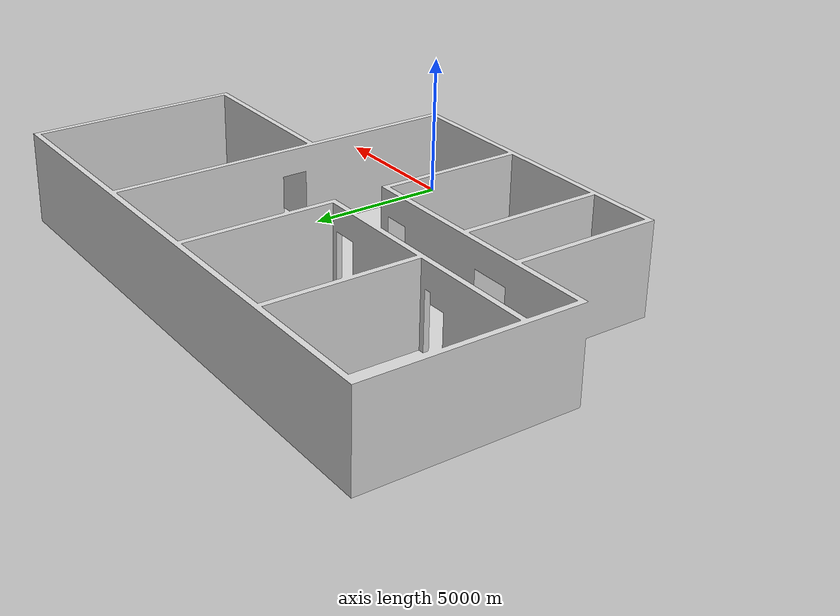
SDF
<?xml version="1.0"?>
<sdf version="1.9">
  <world name="apt">
    <physics type="ode">
      <max_step_size>0.004</max_step_size>
      <real_time_factor>1.0</real_time_factor>
      <real_time_update_rate>250</real_time_update_rate>
    </physics>
    <gravity>0 0 -9.8</gravity>
    <magnetic_field>6e-06 2.3e-05 -4.2e-05</magnetic_field>
    <atmosphere type="adiabatic"/>
    <scene>
      <grid>false</grid>
      <ambient>1 1 1 1</ambient>
      <background>0 0 0 1</background>
      <shadows>false</shadows>
    </scene>
    <include>
      <uri>model://apt</uri>
      <pose>0 -0.8 1.12 0 0 1.57</pose>
    </include>

    <model name="ground_plane_small">
    <static>true</static>
    <link name="link">
      <collision name="collision">
        <pose>0 0 -0.025 0 0 0</pose>
        <geometry>
          <box>
            <size>1 1 0.05</size>
          </box>
        </geometry>
        <surface>
          <friction>
            <ode>
              <mu>100</mu>
              <mu2>50</mu2>
            </ode>
          </friction>
        </surface>
      </collision>
    </link>
  </model>

  <spherical_coordinates>
      <surface_model>EARTH_WGS84</surface_model>
      <world_frame_orientation>ENU</world_frame_orientation>
      <latitude_deg>47.397971057728974</latitude_deg>
      <longitude_deg> 8.546163739800146</longitude_deg>
      <elevation>0</elevation>
    </spherical_coordinates>

  </world>
</sdf>

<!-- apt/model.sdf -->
<sdf version="1.5">
  <model name="apt">
      <pose>0 0 0  0 0 0</pose>
      <static>true</static>
      <link name="body">
        <visual name="visual">
          <geometry>
            <mesh><uri>model://apt/meshes/apt.dae</uri></mesh>
          </geometry>
        </visual>
        <collision name="collision">
            <geometry>
                <mesh>
                    <uri>model://apt/meshes/apt.dae</uri>
                </mesh>
            </geometry>
        </collision>
      </link>
    </model>
</sdf>
